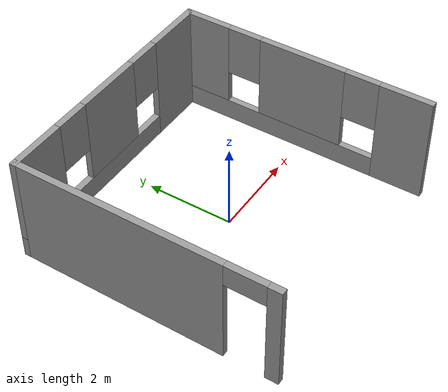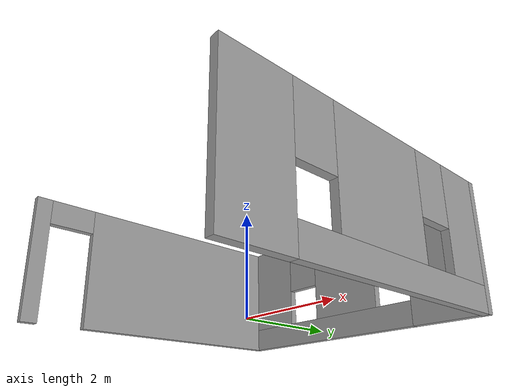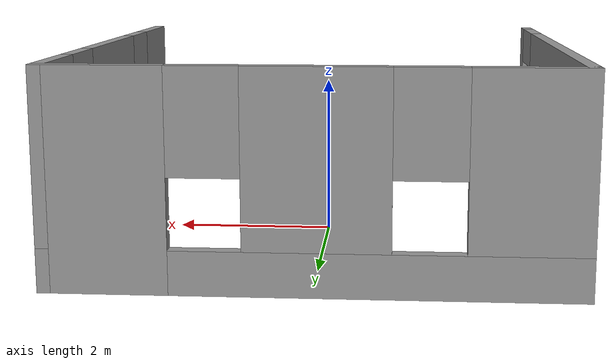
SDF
<?xml version='1.0'?>
<sdf version='1.7'>
  <model name='Room'>
    <link name='Wall_27'>
      <pose>2.925 0 0 0 -0 1.5708</pose>
      <self_collide>0</self_collide>
      <enable_wind>0</enable_wind>
      <kinematic>0</kinematic>
      <visual name='Wall_27_Visual_0'>
        <pose>-2.39692 0 1.25 0 -0 0</pose>
        <geometry>
          <box>
            <size>1.20616 0.15 2.5</size>
          </box>
        </geometry>
        <material>
          <script>
            <uri>file://media/materials/scripts/gazebo.material</uri>
            <name>Gazebo/Grey</name>
          </script>
          <ambient>1 1 1 1</ambient>
          <shader type='pixel'/>
        </material>
        <meta>
          <layer>0</layer>
        </meta>
        <transparency>0</transparency>
        <cast_shadows>1</cast_shadows>
      </visual>
      <visual name='Wall_27_Visual_1'>
        <pose>0.60308 0 0.25 0 -0 0</pose>
        <geometry>
          <box>
            <size>4.79384 0.15 0.5</size>
          </box>
        </geometry>
        <material>
          <script>
            <uri>file://media/materials/scripts/gazebo.material</uri>
            <name>Gazebo/Grey</name>
          </script>
          <ambient>1 1 1 1</ambient>
          <shader type='pixel'/>
        </material>
        <meta>
          <layer>0</layer>
        </meta>
        <transparency>0</transparency>
        <cast_shadows>1</cast_shadows>
      </visual>
      <visual name='Wall_27_Visual_2'>
        <pose>0.027771 0 1.5 0 -0 0</pose>
        <geometry>
          <box>
            <size>2.04322 0.15 2</size>
          </box>
        </geometry>
        <material>
          <script>
            <uri>file://media/materials/scripts/gazebo.material</uri>
            <name>Gazebo/Grey</name>
          </script>
          <ambient>1 1 1 1</ambient>
          <shader type='pixel'/>
        </material>
        <meta>
          <layer>0</layer>
        </meta>
        <transparency>0</transparency>
        <cast_shadows>1</cast_shadows>
      </visual>
      <visual name='Wall_27_Visual_3'>
        <pose>2.42469 0 1.5 0 -0 0</pose>
        <geometry>
          <box>
            <size>1.15062 0.15 2</size>
          </box>
        </geometry>
        <material>
          <script>
            <uri>file://media/materials/scripts/gazebo.material</uri>
            <name>Gazebo/Grey</name>
          </script>
          <ambient>1 1 1 1</ambient>
          <shader type='pixel'/>
        </material>
        <meta>
          <layer>0</layer>
        </meta>
        <transparency>0</transparency>
        <cast_shadows>1</cast_shadows>
      </visual>
      <visual name='Wall_27_Visual_4'>
        <pose>-1.39384 0 1.9 0 -0 0</pose>
        <geometry>
          <box>
            <size>0.8 0.15 1.2</size>
          </box>
        </geometry>
        <material>
          <script>
            <uri>file://media/materials/scripts/gazebo.material</uri>
            <name>Gazebo/Grey</name>
          </script>
          <ambient>1 1 1 1</ambient>
          <shader type='pixel'/>
        </material>
        <meta>
          <layer>0</layer>
        </meta>
        <transparency>0</transparency>
        <cast_shadows>1</cast_shadows>
      </visual>
      <visual name='Wall_27_Visual_5'>
        <pose>1.44938 0 1.9 0 -0 0</pose>
        <geometry>
          <box>
            <size>0.8 0.15 1.2</size>
          </box>
        </geometry>
        <material>
          <script>
            <uri>file://media/materials/scripts/gazebo.material</uri>
            <name>Gazebo/Grey</name>
          </script>
          <ambient>1 1 1 1</ambient>
          <shader type='pixel'/>
        </material>
        <meta>
          <layer>0</layer>
        </meta>
        <transparency>0</transparency>
        <cast_shadows>1</cast_shadows>
      </visual>
      <collision name='Wall_27_Collision_0'>
        <laser_retro>0</laser_retro>
        <max_contacts>10</max_contacts>
        <pose>-2.39692 0 1.25 0 -0 0</pose>
        <geometry>
          <box>
            <size>1.20616 0.15 2.5</size>
          </box>
        </geometry>
        <surface>
          <friction>
            <ode>
              <mu>1</mu>
              <mu2>1</mu2>
              <fdir1>0 0 0</fdir1>
              <slip1>0</slip1>
              <slip2>0</slip2>
            </ode>
            <torsional>
              <coefficient>1</coefficient>
              <patch_radius>0</patch_radius>
              <surface_radius>0</surface_radius>
              <use_patch_radius>1</use_patch_radius>
              <ode>
                <slip>0</slip>
              </ode>
            </torsional>
          </friction>
          <bounce>
            <restitution_coefficient>0</restitution_coefficient>
            <threshold>1e+06</threshold>
          </bounce>
          <contact>
            <collide_without_contact>0</collide_without_contact>
            <collide_without_contact_bitmask>1</collide_without_contact_bitmask>
            <collide_bitmask>1</collide_bitmask>
            <ode>
              <soft_cfm>0</soft_cfm>
              <soft_erp>0.2</soft_erp>
              <kp>1e+13</kp>
              <kd>1</kd>
              <max_vel>0.01</max_vel>
              <min_depth>0</min_depth>
            </ode>
            <bullet>
              <split_impulse>1</split_impulse>
              <split_impulse_penetration_threshold>-0.01</split_impulse_penetration_threshold>
              <soft_cfm>0</soft_cfm>
              <soft_erp>0.2</soft_erp>
              <kp>1e+13</kp>
              <kd>1</kd>
            </bullet>
          </contact>
        </surface>
      </collision>
      <collision name='Wall_27_Collision_1'>
        <laser_retro>0</laser_retro>
        <max_contacts>10</max_contacts>
        <pose>0.60308 0 0.25 0 -0 0</pose>
        <geometry>
          <box>
            <size>4.79384 0.15 0.5</size>
          </box>
        </geometry>
        <surface>
          <friction>
            <ode>
              <mu>1</mu>
              <mu2>1</mu2>
              <fdir1>0 0 0</fdir1>
              <slip1>0</slip1>
              <slip2>0</slip2>
            </ode>
            <torsional>
              <coefficient>1</coefficient>
              <patch_radius>0</patch_radius>
              <surface_radius>0</surface_radius>
              <use_patch_radius>1</use_patch_radius>
              <ode>
                <slip>0</slip>
              </ode>
            </torsional>
          </friction>
          <bounce>
            <restitution_coefficient>0</restitution_coefficient>
            <threshold>1e+06</threshold>
          </bounce>
          <contact>
            <collide_without_contact>0</collide_without_contact>
            <collide_without_contact_bitmask>1</collide_without_contact_bitmask>
            <collide_bitmask>1</collide_bitmask>
            <ode>
              <soft_cfm>0</soft_cfm>
              <soft_erp>0.2</soft_erp>
              <kp>1e+13</kp>
              <kd>1</kd>
              <max_vel>0.01</max_vel>
              <min_depth>0</min_depth>
            </ode>
            <bullet>
              <split_impulse>1</split_impulse>
              <split_impulse_penetration_threshold>-0.01</split_impulse_penetration_threshold>
              <soft_cfm>0</soft_cfm>
              <soft_erp>0.2</soft_erp>
              <kp>1e+13</kp>
              <kd>1</kd>
            </bullet>
          </contact>
        </surface>
      </collision>
      <collision name='Wall_27_Collision_2'>
        <laser_retro>0</laser_retro>
        <max_contacts>10</max_contacts>
        <pose>0.027771 0 1.5 0 -0 0</pose>
        <geometry>
          <box>
            <size>2.04322 0.15 2</size>
          </box>
        </geometry>
        <surface>
          <friction>
            <ode>
              <mu>1</mu>
              <mu2>1</mu2>
              <fdir1>0 0 0</fdir1>
              <slip1>0</slip1>
              <slip2>0</slip2>
            </ode>
            <torsional>
              <coefficient>1</coefficient>
              <patch_radius>0</patch_radius>
              <surface_radius>0</surface_radius>
              <use_patch_radius>1</use_patch_radius>
              <ode>
                <slip>0</slip>
              </ode>
            </torsional>
          </friction>
          <bounce>
            <restitution_coefficient>0</restitution_coefficient>
            <threshold>1e+06</threshold>
          </bounce>
          <contact>
            <collide_without_contact>0</collide_without_contact>
            <collide_without_contact_bitmask>1</collide_without_contact_bitmask>
            <collide_bitmask>1</collide_bitmask>
            <ode>
              <soft_cfm>0</soft_cfm>
              <soft_erp>0.2</soft_erp>
              <kp>1e+13</kp>
              <kd>1</kd>
              <max_vel>0.01</max_vel>
              <min_depth>0</min_depth>
            </ode>
            <bullet>
              <split_impulse>1</split_impulse>
              <split_impulse_penetration_threshold>-0.01</split_impulse_penetration_threshold>
              <soft_cfm>0</soft_cfm>
              <soft_erp>0.2</soft_erp>
              <kp>1e+13</kp>
              <kd>1</kd>
            </bullet>
          </contact>
        </surface>
      </collision>
      <collision name='Wall_27_Collision_3'>
        <laser_retro>0</laser_retro>
        <max_contacts>10</max_contacts>
        <pose>2.42469 0 1.5 0 -0 0</pose>
        <geometry>
          <box>
            <size>1.15062 0.15 2</size>
          </box>
        </geometry>
        <surface>
          <friction>
            <ode>
              <mu>1</mu>
              <mu2>1</mu2>
              <fdir1>0 0 0</fdir1>
              <slip1>0</slip1>
              <slip2>0</slip2>
            </ode>
            <torsional>
              <coefficient>1</coefficient>
              <patch_radius>0</patch_radius>
              <surface_radius>0</surface_radius>
              <use_patch_radius>1</use_patch_radius>
              <ode>
                <slip>0</slip>
              </ode>
            </torsional>
          </friction>
          <bounce>
            <restitution_coefficient>0</restitution_coefficient>
            <threshold>1e+06</threshold>
          </bounce>
          <contact>
            <collide_without_contact>0</collide_without_contact>
            <collide_without_contact_bitmask>1</collide_without_contact_bitmask>
            <collide_bitmask>1</collide_bitmask>
            <ode>
              <soft_cfm>0</soft_cfm>
              <soft_erp>0.2</soft_erp>
              <kp>1e+13</kp>
              <kd>1</kd>
              <max_vel>0.01</max_vel>
              <min_depth>0</min_depth>
            </ode>
            <bullet>
              <split_impulse>1</split_impulse>
              <split_impulse_penetration_threshold>-0.01</split_impulse_penetration_threshold>
              <soft_cfm>0</soft_cfm>
              <soft_erp>0.2</soft_erp>
              <kp>1e+13</kp>
              <kd>1</kd>
            </bullet>
          </contact>
        </surface>
      </collision>
      <collision name='Wall_27_Collision_4'>
        <laser_retro>0</laser_retro>
        <max_contacts>10</max_contacts>
        <pose>-1.39384 0 1.9 0 -0 0</pose>
        <geometry>
          <box>
            <size>0.8 0.15 1.2</size>
          </box>
        </geometry>
        <surface>
          <friction>
            <ode>
              <mu>1</mu>
              <mu2>1</mu2>
              <fdir1>0 0 0</fdir1>
              <slip1>0</slip1>
              <slip2>0</slip2>
            </ode>
            <torsional>
              <coefficient>1</coefficient>
              <patch_radius>0</patch_radius>
              <surface_radius>0</surface_radius>
              <use_patch_radius>1</use_patch_radius>
              <ode>
                <slip>0</slip>
              </ode>
            </torsional>
          </friction>
          <bounce>
            <restitution_coefficient>0</restitution_coefficient>
            <threshold>1e+06</threshold>
          </bounce>
          <contact>
            <collide_without_contact>0</collide_without_contact>
            <collide_without_contact_bitmask>1</collide_without_contact_bitmask>
            <collide_bitmask>1</collide_bitmask>
            <ode>
              <soft_cfm>0</soft_cfm>
              <soft_erp>0.2</soft_erp>
              <kp>1e+13</kp>
              <kd>1</kd>
              <max_vel>0.01</max_vel>
              <min_depth>0</min_depth>
            </ode>
            <bullet>
              <split_impulse>1</split_impulse>
              <split_impulse_penetration_threshold>-0.01</split_impulse_penetration_threshold>
              <soft_cfm>0</soft_cfm>
              <soft_erp>0.2</soft_erp>
              <kp>1e+13</kp>
              <kd>1</kd>
            </bullet>
          </contact>
        </surface>
      </collision>
      <collision name='Wall_27_Collision_5'>
        <laser_retro>0</laser_retro>
        <max_contacts>10</max_contacts>
        <pose>1.44938 0 1.9 0 -0 0</pose>
        <geometry>
          <box>
            <size>0.8 0.15 1.2</size>
          </box>
        </geometry>
        <surface>
          <friction>
            <ode>
              <mu>1</mu>
              <mu2>1</mu2>
              <fdir1>0 0 0</fdir1>
              <slip1>0</slip1>
              <slip2>0</slip2>
            </ode>
            <torsional>
              <coefficient>1</coefficient>
              <patch_radius>0</patch_radius>
              <surface_radius>0</surface_radius>
              <use_patch_radius>1</use_patch_radius>
              <ode>
                <slip>0</slip>
              </ode>
            </torsional>
          </friction>
          <bounce>
            <restitution_coefficient>0</restitution_coefficient>
            <threshold>1e+06</threshold>
          </bounce>
          <contact>
            <collide_without_contact>0</collide_without_contact>
            <collide_without_contact_bitmask>1</collide_without_contact_bitmask>
            <collide_bitmask>1</collide_bitmask>
            <ode>
              <soft_cfm>0</soft_cfm>
              <soft_erp>0.2</soft_erp>
              <kp>1e+13</kp>
              <kd>1</kd>
              <max_vel>0.01</max_vel>
              <min_depth>0</min_depth>
            </ode>
            <bullet>
              <split_impulse>1</split_impulse>
              <split_impulse_penetration_threshold>-0.01</split_impulse_penetration_threshold>
              <soft_cfm>0</soft_cfm>
              <soft_erp>0.2</soft_erp>
              <kp>1e+13</kp>
              <kd>1</kd>
            </bullet>
          </contact>
        </surface>
      </collision>
    </link>
    <link name='Wall_28'>
      <pose>0 2.925 0 0 -0 3.14159</pose>
      <self_collide>0</self_collide>
      <enable_wind>0</enable_wind>
      <kinematic>0</kinematic>
      <visual name='Wall_28_Visual_0'>
        <pose>-2.27574 0 1.25 0 -0 0</pose>
        <geometry>
          <box>
            <size>1.44852 0.15 2.5</size>
          </box>
        </geometry>
        <material>
          <script>
            <uri>file://media/materials/scripts/gazebo.material</uri>
            <name>Gazebo/Grey</name>
          </script>
          <ambient>1 1 1 1</ambient>
          <shader type='pixel'/>
        </material>
        <meta>
          <layer>0</layer>
        </meta>
        <transparency>0</transparency>
        <cast_shadows>1</cast_shadows>
      </visual>
      <visual name='Wall_28_Visual_1'>
        <pose>0.724261 0 0.25 0 -0 0</pose>
        <geometry>
          <box>
            <size>4.55148 0.15 0.5</size>
          </box>
        </geometry>
        <material>
          <script>
            <uri>file://media/materials/scripts/gazebo.material</uri>
            <name>Gazebo/Grey</name>
          </script>
          <ambient>1 1 1 1</ambient>
          <shader type='pixel'/>
        </material>
        <meta>
          <layer>0</layer>
        </meta>
        <transparency>0</transparency>
        <cast_shadows>1</cast_shadows>
      </visual>
      <visual name='Wall_28_Visual_2'>
        <pose>0.055293 0 1.5 0 -0 0</pose>
        <geometry>
          <box>
            <size>1.61354 0.15 2</size>
          </box>
        </geometry>
        <material>
          <script>
            <uri>file://media/materials/scripts/gazebo.material</uri>
            <name>Gazebo/Grey</name>
          </script>
          <ambient>1 1 1 1</ambient>
          <shader type='pixel'/>
        </material>
        <meta>
          <layer>0</layer>
        </meta>
        <transparency>0</transparency>
        <cast_shadows>1</cast_shadows>
      </visual>
      <visual name='Wall_28_Visual_3'>
        <pose>2.33103 0 1.5 0 -0 0</pose>
        <geometry>
          <box>
            <size>1.33794 0.15 2</size>
          </box>
        </geometry>
        <material>
          <script>
            <uri>file://media/materials/scripts/gazebo.material</uri>
            <name>Gazebo/Grey</name>
          </script>
          <ambient>1 1 1 1</ambient>
          <shader type='pixel'/>
        </material>
        <meta>
          <layer>0</layer>
        </meta>
        <transparency>0</transparency>
        <cast_shadows>1</cast_shadows>
      </visual>
      <visual name='Wall_28_Visual_4'>
        <pose>-1.15148 0 1.9 0 -0 0</pose>
        <geometry>
          <box>
            <size>0.8 0.15 1.2</size>
          </box>
        </geometry>
        <material>
          <script>
            <uri>file://media/materials/scripts/gazebo.material</uri>
            <name>Gazebo/Grey</name>
          </script>
          <ambient>1 1 1 1</ambient>
          <shader type='pixel'/>
        </material>
        <meta>
          <layer>0</layer>
        </meta>
        <transparency>0</transparency>
        <cast_shadows>1</cast_shadows>
      </visual>
      <visual name='Wall_28_Visual_5'>
        <pose>1.26206 0 1.9 0 -0 0</pose>
        <geometry>
          <box>
            <size>0.8 0.15 1.2</size>
          </box>
        </geometry>
        <material>
          <script>
            <uri>file://media/materials/scripts/gazebo.material</uri>
            <name>Gazebo/Grey</name>
          </script>
          <ambient>1 1 1 1</ambient>
          <shader type='pixel'/>
        </material>
        <meta>
          <layer>0</layer>
        </meta>
        <transparency>0</transparency>
        <cast_shadows>1</cast_shadows>
      </visual>
      <collision name='Wall_28_Collision_0'>
        <laser_retro>0</laser_retro>
        <max_contacts>10</max_contacts>
        <pose>-2.27574 0 1.25 0 -0 0</pose>
        <geometry>
          <box>
            <size>1.44852 0.15 2.5</size>
          </box>
        </geometry>
        <surface>
          <friction>
            <ode>
              <mu>1</mu>
              <mu2>1</mu2>
              <fdir1>0 0 0</fdir1>
              <slip1>0</slip1>
              <slip2>0</slip2>
            </ode>
            <torsional>
              <coefficient>1</coefficient>
              <patch_radius>0</patch_radius>
              <surface_radius>0</surface_radius>
              <use_patch_radius>1</use_patch_radius>
              <ode>
                <slip>0</slip>
              </ode>
            </torsional>
          </friction>
          <bounce>
            <restitution_coefficient>0</restitution_coefficient>
            <threshold>1e+06</threshold>
          </bounce>
          <contact>
            <collide_without_contact>0</collide_without_contact>
            <collide_without_contact_bitmask>1</collide_without_contact_bitmask>
            <collide_bitmask>1</collide_bitmask>
            <ode>
              <soft_cfm>0</soft_cfm>
              <soft_erp>0.2</soft_erp>
              <kp>1e+13</kp>
              <kd>1</kd>
              <max_vel>0.01</max_vel>
              <min_depth>0</min_depth>
            </ode>
            <bullet>
              <split_impulse>1</split_impulse>
              <split_impulse_penetration_threshold>-0.01</split_impulse_penetration_threshold>
              <soft_cfm>0</soft_cfm>
              <soft_erp>0.2</soft_erp>
              <kp>1e+13</kp>
              <kd>1</kd>
            </bullet>
          </contact>
        </surface>
      </collision>
      <collision name='Wall_28_Collision_1'>
        <laser_retro>0</laser_retro>
        <max_contacts>10</max_contacts>
        <pose>0.724261 0 0.25 0 -0 0</pose>
        <geometry>
          <box>
            <size>4.55148 0.15 0.5</size>
          </box>
        </geometry>
        <surface>
          <friction>
            <ode>
              <mu>1</mu>
              <mu2>1</mu2>
              <fdir1>0 0 0</fdir1>
              <slip1>0</slip1>
              <slip2>0</slip2>
            </ode>
            <torsional>
              <coefficient>1</coefficient>
              <patch_radius>0</patch_radius>
              <surface_radius>0</surface_radius>
              <use_patch_radius>1</use_patch_radius>
              <ode>
                <slip>0</slip>
              </ode>
            </torsional>
          </friction>
          <bounce>
            <restitution_coefficient>0</restitution_coefficient>
            <threshold>1e+06</threshold>
          </bounce>
          <contact>
            <collide_without_contact>0</collide_without_contact>
            <collide_without_contact_bitmask>1</collide_without_contact_bitmask>
            <collide_bitmask>1</collide_bitmask>
            <ode>
              <soft_cfm>0</soft_cfm>
              <soft_erp>0.2</soft_erp>
              <kp>1e+13</kp>
              <kd>1</kd>
              <max_vel>0.01</max_vel>
              <min_depth>0</min_depth>
            </ode>
            <bullet>
              <split_impulse>1</split_impulse>
              <split_impulse_penetration_threshold>-0.01</split_impulse_penetration_threshold>
              <soft_cfm>0</soft_cfm>
              <soft_erp>0.2</soft_erp>
              <kp>1e+13</kp>
              <kd>1</kd>
            </bullet>
          </contact>
        </surface>
      </collision>
      <collision name='Wall_28_Collision_2'>
        <laser_retro>0</laser_retro>
        <max_contacts>10</max_contacts>
        <pose>0.055293 0 1.5 0 -0 0</pose>
        <geometry>
          <box>
            <size>1.61354 0.15 2</size>
          </box>
        </geometry>
        <surface>
          <friction>
            <ode>
              <mu>1</mu>
              <mu2>1</mu2>
              <fdir1>0 0 0</fdir1>
              <slip1>0</slip1>
              <slip2>0</slip2>
            </ode>
            <torsional>
              <coefficient>1</coefficient>
              <patch_radius>0</patch_radius>
              <surface_radius>0</surface_radius>
              <use_patch_radius>1</use_patch_radius>
              <ode>
                <slip>0</slip>
              </ode>
            </torsional>
          </friction>
          <bounce>
            <restitution_coefficient>0</restitution_coefficient>
            <threshold>1e+06</threshold>
          </bounce>
          <contact>
            <collide_without_contact>0</collide_without_contact>
            <collide_without_contact_bitmask>1</collide_without_contact_bitmask>
            <collide_bitmask>1</collide_bitmask>
            <ode>
              <soft_cfm>0</soft_cfm>
              <soft_erp>0.2</soft_erp>
              <kp>1e+13</kp>
              <kd>1</kd>
              <max_vel>0.01</max_vel>
              <min_depth>0</min_depth>
            </ode>
            <bullet>
              <split_impulse>1</split_impulse>
              <split_impulse_penetration_threshold>-0.01</split_impulse_penetration_threshold>
              <soft_cfm>0</soft_cfm>
              <soft_erp>0.2</soft_erp>
              <kp>1e+13</kp>
              <kd>1</kd>
            </bullet>
          </contact>
        </surface>
      </collision>
      <collision name='Wall_28_Collision_3'>
        <laser_retro>0</laser_retro>
        <max_contacts>10</max_contacts>
        <pose>2.33103 0 1.5 0 -0 0</pose>
        <geometry>
          <box>
            <size>1.33794 0.15 2</size>
          </box>
        </geometry>
        <surface>
          <friction>
            <ode>
              <mu>1</mu>
              <mu2>1</mu2>
              <fdir1>0 0 0</fdir1>
              <slip1>0</slip1>
              <slip2>0</slip2>
            </ode>
            <torsional>
              <coefficient>1</coefficient>
              <patch_radius>0</patch_radius>
              <surface_radius>0</surface_radius>
              <use_patch_radius>1</use_patch_radius>
              <ode>
                <slip>0</slip>
              </ode>
            </torsional>
          </friction>
          <bounce>
            <restitution_coefficient>0</restitution_coefficient>
            <threshold>1e+06</threshold>
          </bounce>
          <contact>
            <collide_without_contact>0</collide_without_contact>
            <collide_without_contact_bitmask>1</collide_without_contact_bitmask>
            <collide_bitmask>1</collide_bitmask>
            <ode>
              <soft_cfm>0</soft_cfm>
              <soft_erp>0.2</soft_erp>
              <kp>1e+13</kp>
              <kd>1</kd>
              <max_vel>0.01</max_vel>
              <min_depth>0</min_depth>
            </ode>
            <bullet>
              <split_impulse>1</split_impulse>
              <split_impulse_penetration_threshold>-0.01</split_impulse_penetration_threshold>
              <soft_cfm>0</soft_cfm>
              <soft_erp>0.2</soft_erp>
              <kp>1e+13</kp>
              <kd>1</kd>
            </bullet>
          </contact>
        </surface>
      </collision>
      <collision name='Wall_28_Collision_4'>
        <laser_retro>0</laser_retro>
        <max_contacts>10</max_contacts>
        <pose>-1.15148 0 1.9 0 -0 0</pose>
        <geometry>
          <box>
            <size>0.8 0.15 1.2</size>
          </box>
        </geometry>
        <surface>
          <friction>
            <ode>
              <mu>1</mu>
              <mu2>1</mu2>
              <fdir1>0 0 0</fdir1>
              <slip1>0</slip1>
              <slip2>0</slip2>
            </ode>
            <torsional>
              <coefficient>1</coefficient>
              <patch_radius>0</patch_radius>
              <surface_radius>0</surface_radius>
              <use_patch_radius>1</use_patch_radius>
              <ode>
                <slip>0</slip>
              </ode>
            </torsional>
          </friction>
          <bounce>
            <restitution_coefficient>0</restitution_coefficient>
            <threshold>1e+06</threshold>
          </bounce>
          <contact>
            <collide_without_contact>0</collide_without_contact>
            <collide_without_contact_bitmask>1</collide_without_contact_bitmask>
            <collide_bitmask>1</collide_bitmask>
            <ode>
              <soft_cfm>0</soft_cfm>
              <soft_erp>0.2</soft_erp>
              <kp>1e+13</kp>
              <kd>1</kd>
              <max_vel>0.01</max_vel>
              <min_depth>0</min_depth>
            </ode>
            <bullet>
              <split_impulse>1</split_impulse>
              <split_impulse_penetration_threshold>-0.01</split_impulse_penetration_threshold>
              <soft_cfm>0</soft_cfm>
              <soft_erp>0.2</soft_erp>
              <kp>1e+13</kp>
              <kd>1</kd>
            </bullet>
          </contact>
        </surface>
      </collision>
      <collision name='Wall_28_Collision_5'>
        <laser_retro>0</laser_retro>
        <max_contacts>10</max_contacts>
        <pose>1.26206 0 1.9 0 -0 0</pose>
        <geometry>
          <box>
            <size>0.8 0.15 1.2</size>
          </box>
        </geometry>
        <surface>
          <friction>
            <ode>
              <mu>1</mu>
              <mu2>1</mu2>
              <fdir1>0 0 0</fdir1>
              <slip1>0</slip1>
              <slip2>0</slip2>
            </ode>
            <torsional>
              <coefficient>1</coefficient>
              <patch_radius>0</patch_radius>
              <surface_radius>0</surface_radius>
              <use_patch_radius>1</use_patch_radius>
              <ode>
                <slip>0</slip>
              </ode>
            </torsional>
          </friction>
          <bounce>
            <restitution_coefficient>0</restitution_coefficient>
            <threshold>1e+06</threshold>
          </bounce>
          <contact>
            <collide_without_contact>0</collide_without_contact>
            <collide_without_contact_bitmask>1</collide_without_contact_bitmask>
            <collide_bitmask>1</collide_bitmask>
            <ode>
              <soft_cfm>0</soft_cfm>
              <soft_erp>0.2</soft_erp>
              <kp>1e+13</kp>
              <kd>1</kd>
              <max_vel>0.01</max_vel>
              <min_depth>0</min_depth>
            </ode>
            <bullet>
              <split_impulse>1</split_impulse>
              <split_impulse_penetration_threshold>-0.01</split_impulse_penetration_threshold>
              <soft_cfm>0</soft_cfm>
              <soft_erp>0.2</soft_erp>
              <kp>1e+13</kp>
              <kd>1</kd>
            </bullet>
          </contact>
        </surface>
      </collision>
    </link>
    <link name='Wall_29'>
      <pose>-2.925 0 0 0 0 -1.5708</pose>
      <self_collide>0</self_collide>
      <enable_wind>0</enable_wind>
      <kinematic>0</kinematic>
      <visual name='Wall_29_Visual_0'>
        <pose>-0.602968 0 1.25 0 -0 0</pose>
        <geometry>
          <box>
            <size>4.79406 0.15 2.5</size>
          </box>
        </geometry>
        <material>
          <script>
            <uri>file://media/materials/scripts/gazebo.material</uri>
            <name>Gazebo/Grey</name>
          </script>
          <ambient>1 1 1 1</ambient>
          <shader type='pixel'/>
        </material>
        <meta>
          <layer>0</layer>
        </meta>
        <transparency>0</transparency>
        <cast_shadows>1</cast_shadows>
      </visual>
      <visual name='Wall_29_Visual_1'>
        <pose>2.84703 0 1.25 0 -0 0</pose>
        <geometry>
          <box>
            <size>0.305935 0.15 2.5</size>
          </box>
        </geometry>
        <material>
          <script>
            <uri>file://media/materials/scripts/gazebo.material</uri>
            <name>Gazebo/Grey</name>
          </script>
          <ambient>1 1 1 1</ambient>
          <shader type='pixel'/>
        </material>
        <meta>
          <layer>0</layer>
        </meta>
        <transparency>0</transparency>
        <cast_shadows>1</cast_shadows>
      </visual>
      <visual name='Wall_29_Visual_2'>
        <pose>2.24406 0 2.25 0 -0 0</pose>
        <geometry>
          <box>
            <size>0.9 0.15 0.5</size>
          </box>
        </geometry>
        <material>
          <script>
            <uri>file://media/materials/scripts/gazebo.material</uri>
            <name>Gazebo/Grey</name>
          </script>
          <ambient>1 1 1 1</ambient>
          <shader type='pixel'/>
        </material>
        <meta>
          <layer>0</layer>
        </meta>
        <transparency>0</transparency>
        <cast_shadows>1</cast_shadows>
      </visual>
      <collision name='Wall_29_Collision_0'>
        <laser_retro>0</laser_retro>
        <max_contacts>10</max_contacts>
        <pose>-0.602968 0 1.25 0 -0 0</pose>
        <geometry>
          <box>
            <size>4.79406 0.15 2.5</size>
          </box>
        </geometry>
        <surface>
          <friction>
            <ode>
              <mu>1</mu>
              <mu2>1</mu2>
              <fdir1>0 0 0</fdir1>
              <slip1>0</slip1>
              <slip2>0</slip2>
            </ode>
            <torsional>
              <coefficient>1</coefficient>
              <patch_radius>0</patch_radius>
              <surface_radius>0</surface_radius>
              <use_patch_radius>1</use_patch_radius>
              <ode>
                <slip>0</slip>
              </ode>
            </torsional>
          </friction>
          <bounce>
            <restitution_coefficient>0</restitution_coefficient>
            <threshold>1e+06</threshold>
          </bounce>
          <contact>
            <collide_without_contact>0</collide_without_contact>
            <collide_without_contact_bitmask>1</collide_without_contact_bitmask>
            <collide_bitmask>1</collide_bitmask>
            <ode>
              <soft_cfm>0</soft_cfm>
              <soft_erp>0.2</soft_erp>
              <kp>1e+13</kp>
              <kd>1</kd>
              <max_vel>0.01</max_vel>
              <min_depth>0</min_depth>
            </ode>
            <bullet>
              <split_impulse>1</split_impulse>
              <split_impulse_penetration_threshold>-0.01</split_impulse_penetration_threshold>
              <soft_cfm>0</soft_cfm>
              <soft_erp>0.2</soft_erp>
              <kp>1e+13</kp>
              <kd>1</kd>
            </bullet>
          </contact>
        </surface>
      </collision>
      <collision name='Wall_29_Collision_1'>
        <laser_retro>0</laser_retro>
        <max_contacts>10</max_contacts>
        <pose>2.84703 0 1.25 0 -0 0</pose>
        <geometry>
          <box>
            <size>0.305935 0.15 2.5</size>
          </box>
        </geometry>
        <surface>
          <friction>
            <ode>
              <mu>1</mu>
              <mu2>1</mu2>
              <fdir1>0 0 0</fdir1>
              <slip1>0</slip1>
              <slip2>0</slip2>
            </ode>
            <torsional>
              <coefficient>1</coefficient>
              <patch_radius>0</patch_radius>
              <surface_radius>0</surface_radius>
              <use_patch_radius>1</use_patch_radius>
              <ode>
                <slip>0</slip>
              </ode>
            </torsional>
          </friction>
          <bounce>
            <restitution_coefficient>0</restitution_coefficient>
            <threshold>1e+06</threshold>
          </bounce>
          <contact>
            <collide_without_contact>0</collide_without_contact>
            <collide_without_contact_bitmask>1</collide_without_contact_bitmask>
            <collide_bitmask>1</collide_bitmask>
            <ode>
              <soft_cfm>0</soft_cfm>
              <soft_erp>0.2</soft_erp>
              <kp>1e+13</kp>
              <kd>1</kd>
              <max_vel>0.01</max_vel>
              <min_depth>0</min_depth>
            </ode>
            <bullet>
              <split_impulse>1</split_impulse>
              <split_impulse_penetration_threshold>-0.01</split_impulse_penetration_threshold>
              <soft_cfm>0</soft_cfm>
              <soft_erp>0.2</soft_erp>
              <kp>1e+13</kp>
              <kd>1</kd>
            </bullet>
          </contact>
        </surface>
      </collision>
      <collision name='Wall_29_Collision_2'>
        <laser_retro>0</laser_retro>
        <max_contacts>10</max_contacts>
        <pose>2.24406 0 2.25 0 -0 0</pose>
        <geometry>
          <box>
            <size>0.9 0.15 0.5</size>
          </box>
        </geometry>
        <surface>
          <friction>
            <ode>
              <mu>1</mu>
              <mu2>1</mu2>
              <fdir1>0 0 0</fdir1>
              <slip1>0</slip1>
              <slip2>0</slip2>
            </ode>
            <torsional>
              <coefficient>1</coefficient>
              <patch_radius>0</patch_radius>
              <surface_radius>0</surface_radius>
              <use_patch_radius>1</use_patch_radius>
              <ode>
                <slip>0</slip>
              </ode>
            </torsional>
          </friction>
          <bounce>
            <restitution_coefficient>0</restitution_coefficient>
            <threshold>1e+06</threshold>
          </bounce>
          <contact>
            <collide_without_contact>0</collide_without_contact>
            <collide_without_contact_bitmask>1</collide_without_contact_bitmask>
            <collide_bitmask>1</collide_bitmask>
            <ode>
              <soft_cfm>0</soft_cfm>
              <soft_erp>0.2</soft_erp>
              <kp>1e+13</kp>
              <kd>1</kd>
              <max_vel>0.01</max_vel>
              <min_depth>0</min_depth>
            </ode>
            <bullet>
              <split_impulse>1</split_impulse>
              <split_impulse_penetration_threshold>-0.01</split_impulse_penetration_threshold>
              <soft_cfm>0</soft_cfm>
              <soft_erp>0.2</soft_erp>
              <kp>1e+13</kp>
              <kd>1</kd>
            </bullet>
          </contact>
        </surface>
      </collision>
    </link>
    <static>1</static>
    <allow_auto_disable>1</allow_auto_disable>
  </model>
</sdf>
